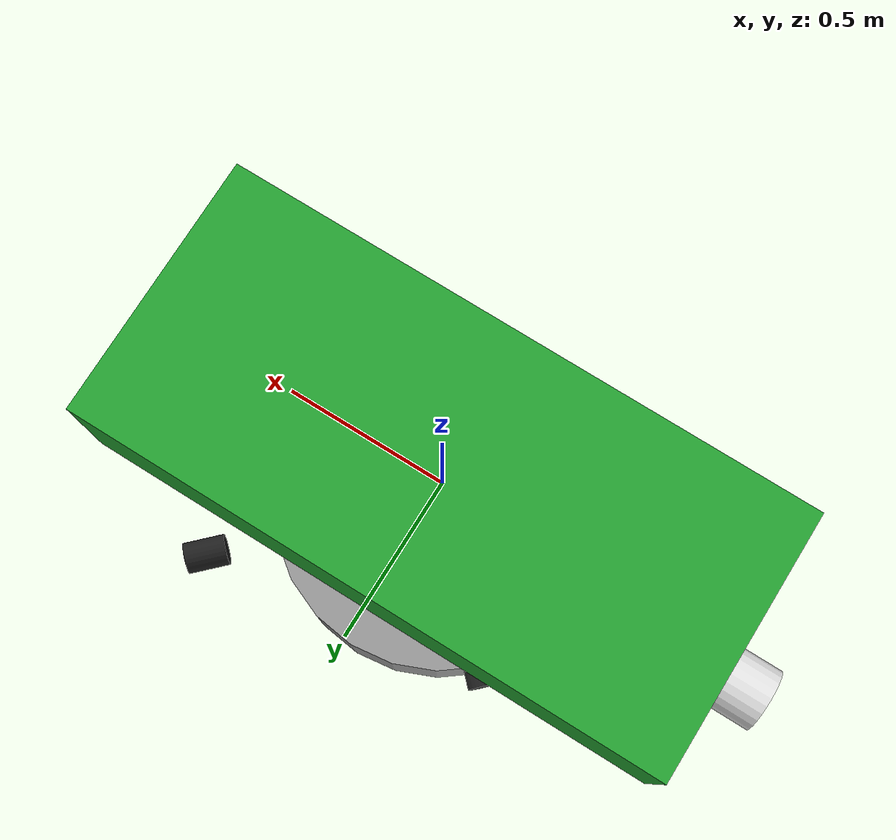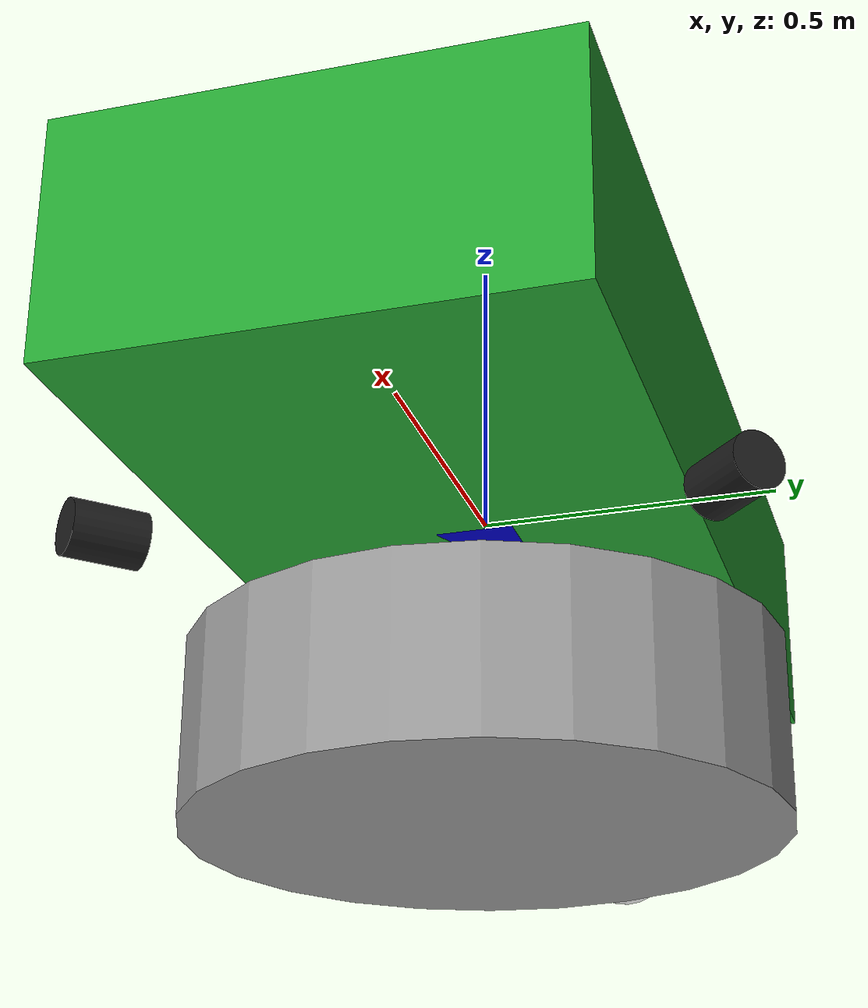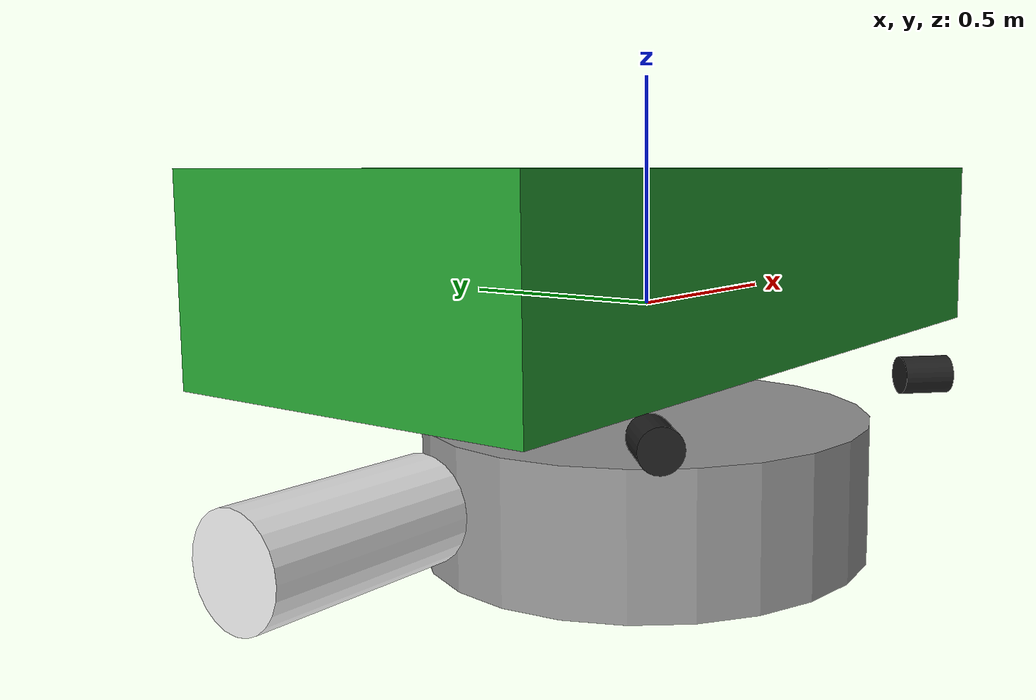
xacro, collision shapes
<?xml version="1.0"?>
<!-- Revolute-Revolute Manipulator -->
<robot name="auv" xmlns:xacro="http://www.ros.org/wiki/xacro">

    <!-- Constants for robot dimensions -->
    <xacro:property name="PI" value="3.1415926535897931"/>

    <!-- Import all Gazebo-customization elements, including Gazebo colors -->
    <xacro:include filename="materials.xacro" />
    <xacro:include filename="kayak_base.urdf.xacro" />
    <xacro:include filename="kayak.gazebo" />

</robot>

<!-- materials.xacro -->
<robot>

  <material name="black">
    <color rgba="0.0 0.0 0.0 1.0"/>
  </material>

  <material name="blue">
    <color rgba="0.0 0.0 0.8 1.0"/>
  </material>

  <material name="green">
    <color rgba="0.0 0.8 0.0 1.0"/>
  </material>

  <material name="gray">
    <color rgba="0.2 0.2 0.2 1.0"/>
  </material>

  <material name="grey">
    <color rgba="0.2 0.2 0.2 1.0"/>
  </material>

  <material name="orange">
    <color rgba="${255/255} ${108/255} ${10/255} 1.0"/>
  </material>

  <material name="brown">
    <color rgba="${222/255} ${207/255} ${195/255} 1.0"/>
  </material>

  <material name="red">
    <color rgba="0.8 0.0 0.0 1.0"/>
  </material>

  <material name="white">
    <color rgba="1.0 1.0 1.0 1.0"/>
  </material>

</robot>

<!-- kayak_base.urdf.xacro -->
<!-- Revolute-Revolute Manipulator -->
<robot name="kayak" xmlns:xacro="http://www.ros.org/wiki/xacro">

    <!-- Constants for robot dimensions -->
    <xacro:property name="PI" value="3.1415926535897931"/>
    <xacro:property name="kayak_mass" value="10" />
    <xacro:property name="kayak_length" value="1.8" />
    <xacro:property name="kayak_width" value="0.8" />
    <xacro:property name="kayak_thickness" value="0.4" />
    <xacro:property name="kayak_drift" value="0.1" />
    <xacro:property name="propeller_mass" value="1.5" />
    <xacro:property name="propeller_length" value="0.40" />
    <xacro:property name="propeller_radius" value="0.1" />
    <xacro:property name="adcp_mass" value="20" />
    <xacro:property name="adcp_length" value="0.30" />
    <xacro:property name="adcp_radius" value="0.09" />
    <xacro:property name="fake_adcp_radius" value="0.5" />
    <xacro:property name="thruster_mass" value="0.1" />
    <xacro:property name="thruster_length" value="0.12" />
    <xacro:property name="thruster_radius" value="0.045" />
    <xacro:property name="sensor_box_mass" value="0.5" />
    <xacro:property name="sensor_box_length" value="0.4" />
    <xacro:property name="sensor_box_width" value="0.2" />
    <xacro:property name="sensor_box_thickness" value="0.2" />

    <!-- Import all Gazebo-customization elements, including Gazebo colors -->
    <!--xacro:include filename="materials.xacro" /-->

    <!-- macro for thrusters -->
    <xacro:macro name="thruster" params="position">
        <link name="${position}_thruster_link">
            <collision>
                <origin xyz="0.1 ${thruster_radius} ${-1*thruster_radius} " rpy="0 ${PI/2} 0"/>
                <geometry>
                    <cylinder length="${thruster_length}" radius="${thruster_radius}"/>
                </geometry>
            </collision>

            <visual>
                <origin xyz="0 0 0" rpy="0 ${PI/2} 0"/>
                <geometry>
                    <mesh filename="package://auv_ros_description/meshes/T200-THRUSTER-BLUEESC-R1.dae"
                        scale="0.001 0.001 0.001"/>
                </geometry>
            </visual>

            <inertial>
                <origin xyz="0 0 0" rpy="0 ${PI/2} 0"/>
                <mass value="${thruster_mass}"/>
                <inertia
                    ixx="${thruster_mass / 12.0 * (3*thruster_radius*thruster_radius + thruster_length*thruster_length)}" ixy="0.0" ixz="0.0"
                    iyy="${thruster_mass / 12.0 * (3*thruster_radius*thruster_radius + thruster_length*thruster_length)}" iyz="0.0"
                    izz="${thruster_mass / 2.0 * thruster_radius*thruster_radius}"/>
            </inertial>
        </link>
    </xacro:macro>

    <!-- Base Link -->
    <link name="base_link">
        <collision>
            <origin xyz="0 0 ${kayak_drift}" rpy="0 0 0"/>
            <geometry>
                <box size="${kayak_length} ${kayak_width} ${kayak_thickness}"/>
            </geometry>
        </collision>

        <visual>
            <origin xyz="${kayak_length/2} ${kayak_width/2} -${kayak_thickness}" rpy="${PI/2} 0 -${PI/2}"/>
            <geometry>
                <!--box size="${kayak_length} ${kayak_width} ${kayak_thickness}"/-->
                <mesh filename="package://auv_ros_description/meshes/Kayak.STL" scale="0.001 0.001 0.001" />
            </geometry>
        </visual>

        <inertial>
            <origin xyz="0 0 ${kayak_drift}" rpy="0 0 0"/>
            <mass value="${kayak_mass}"/>
            <inertia
                ixx="${kayak_mass / 12.0 * (kayak_length*kayak_length + kayak_thickness*kayak_thickness)}" ixy="0.0" ixz="0.0"
                iyy="${kayak_mass / 12.0 * (kayak_length*kayak_length + kayak_width*kayak_width)}" iyz="0.0"
                izz="${kayak_mass / 12.0 * (kayak_width*kayak_width + kayak_thickness*kayak_thickness)}"/>
        </inertial>
    </link>

    <!-- main thruster -->
    <joint name="main_thruster_joint" type="fixed">
        <parent link="base_link"/>
        <child link="main_thruster_link"/>
        <origin xyz="-${kayak_length/2} 0 -${kayak_thickness/2+propeller_radius}" rpy="0 0 0"/>
    </joint>

    <link name="main_thruster_link">
        <collision>
            <origin xyz="0 0 0" rpy="0 ${PI/2} 0"/>
            <geometry>
                <cylinder length="${propeller_length}" radius="${propeller_radius}" />
            </geometry>
        </collision>

        <visual>
            <origin xyz="-0.2 -0.15 -${3*propeller_radius}" rpy="-${PI/24} 0 0"/>
            <geometry>
                <mesh filename="package://auv_ros_description/meshes/Propeller.dae" scale="0.001 0.001 0.001" />
            </geometry>
        </visual>

        <inertial>
            <origin xyz="0 0 0" rpy="0 ${PI/2} 0"/>
            <mass value="${propeller_mass}"/>
            <inertia
                ixx="${propeller_mass / 12.0 * (3*propeller_radius*propeller_radius + propeller_length*propeller_length)}" ixy="0.0" ixz="0.0"
                iyy="${propeller_mass / 12.0 * (3*propeller_radius*propeller_radius + propeller_length*propeller_length)}" iyz="0.0"
                izz="${propeller_mass / 2.0 * propeller_radius*propeller_radius}"/>
        </inertial>
    </link>

    <!-- left thruster joint -->
    <joint name="front_left_thruster_joint" type="fixed">
        <axis xyz="1 0 0" />
        <parent link="base_link"/>
        <child link="front_left_thruster_link"/>
        <origin xyz="${kayak_length/4} ${kayak_width/2} ${-0.5*kayak_thickness-thruster_radius}" rpy="${PI/2} 0 ${PI/4}"/>
    </joint>

    <joint name="rear_left_thruster_joint" type="fixed">
        <axis xyz="1 0 0" />
        <parent link="base_link"/>
        <child link="rear_left_thruster_link"/>
        <origin xyz="-${kayak_length/4} ${kayak_width/2} ${-0.5*kayak_thickness-thruster_radius}" rpy="${PI/2} 0 -${PI/4}"/>
    </joint>

    <!-- left thruster Link -->
    <xacro:thruster position="front_left"/>
    <xacro:thruster position="rear_left"/>

    <!-- right thruster joint -->
    <joint name="front_right_thruster_joint" type="fixed">
        <axis xyz="1 0 0" />
        <parent link="base_link"/>
        <child link="front_right_thruster_link"/>
        <origin xyz="${kayak_length/4} -${kayak_width/2} ${-0.5*kayak_thickness-thruster_radius}" rpy="${PI/2} 0 -${PI/4}"/>
    </joint>

    <joint name="rear_right_thruster_joint" type="fixed">
        <axis xyz="1 0 0" />
        <parent link="base_link"/>
        <child link="rear_right_thruster_link"/>
        <origin xyz="-${kayak_length/4} -${kayak_width/2} ${-0.5*kayak_thickness-thruster_radius}" rpy="${PI/2} 0 ${PI/4}"/>
    </joint>

    <!-- right thruster Link -->
    <xacro:thruster position="front_right"/>
    <xacro:thruster position="rear_right"/>

    <!-- sensor box joint-->
    <joint name="sensor_box_joint" type="fixed">
        <parent link="base_link"/>
        <child link="sensor_box_link"/>
        <origin xyz="0 0 0" rpy="0 0 0"/>
    </joint>

    <!-- sensor box -->
    <link name="sensor_box_link">
        <collision>
            <origin xyz="0 0 0" rpy="0 0 0"/>
            <geometry>
                <box size="${sensor_box_length} ${sensor_box_width} ${sensor_box_thickness}"/>
            </geometry>
        </collision>

        <visual>
            <origin xyz="0 0 0" rpy="0 0 0"/>
            <geometry>
                <box size="${sensor_box_length} ${sensor_box_width} ${sensor_box_thickness}"/>
            </geometry>
            <material name="blue"/>
        </visual>

        <inertial>
            <origin xyz="0 0 0" rpy="0 0 0"/>
            <mass value="${sensor_box_mass}"/>
            <inertia
                ixx="${sensor_box_mass / 12.0 * (sensor_box_length*sensor_box_length + sensor_box_thickness*sensor_box_thickness)}" ixy="0.0" ixz="0.0"
                iyy="${sensor_box_mass / 12.0 * (sensor_box_length*sensor_box_length + sensor_box_width*sensor_box_width)}" iyz="0.0"
                izz="${sensor_box_mass / 12.0 * (sensor_box_width*sensor_box_width + sensor_box_thickness*sensor_box_thickness)}"/>
        </inertial>
    </link>

    <!-- adcp joint-->
    <joint name="adcp_joint" type="fixed">
        <parent link="base_link"/>
        <child link="adcp_link"/>
        <origin xyz="0 0 -${kayak_thickness/2}" rpy="0 0 0"/>
    </joint>

    <link name="adcp_link">
        <collision>
            <origin xyz="0 0 -${kayak_thickness/2}" rpy="0 0 0"/>
            <geometry>
                <cylinder length="${adcp_length}" radius="${fake_adcp_radius}" />
            </geometry>
        </collision>
        <visual>
            <origin xyz="-${adcp_radius} -${adcp_radius} 0" rpy="-${PI/2} 0 0"/>
            <geometry>
                <mesh filename="package://auv_ros_description/meshes/ADCP.STL" scale="0.001 0.001 0.001" />
            </geometry>
        </visual>
        <inertial>
            <origin xyz="0 0 0" rpy="0 0 0"/>
            <mass value="${adcp_mass}"/>
            <inertia
                ixx="${adcp_mass / 12.0 * (3*adcp_radius*adcp_radius + adcp_length*adcp_length)}" ixy="0.0" ixz="0.0"
                iyy="${adcp_mass / 12.0 * (3*adcp_radius*adcp_radius + adcp_length*adcp_length)}" iyz="0.0"
                izz="${adcp_mass / 2.0 * adcp_radius*adcp_radius}"/>
        </inertial>
    </link>
</robot>
